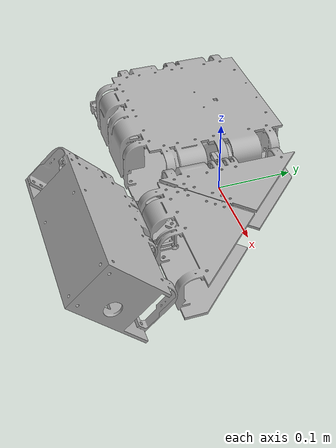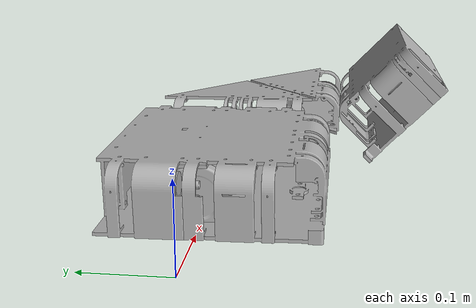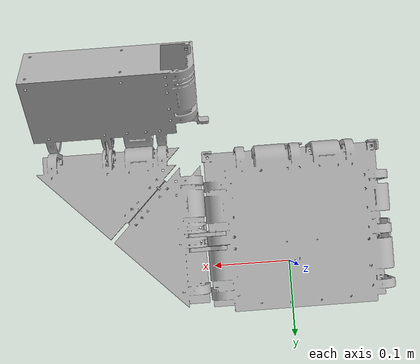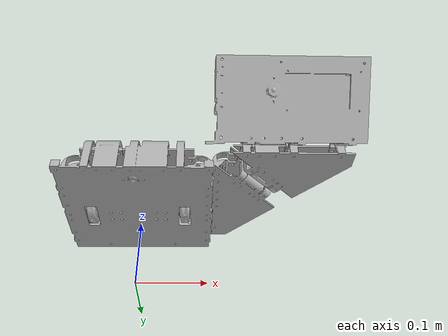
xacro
<?xml version="1.0" ?>
<robot name="oscar" xmlns:xacro="http://www.ros.org/wiki/xacro">

<xacro:include filename="$(find oscar_description)/urdf/materials.xacro" />
<xacro:include filename="$(find oscar_description)/urdf/oscar.trans" />
<xacro:include filename="$(find oscar_description)/urdf/oscar.gazebo" />
<link name="base_link">
  <inertial>
    <origin xyz="0.0019778566400626535 -0.04361891802559598 0.11535924434069494" rpy="0 0 0"/>
    <mass value="3.5985309735333133"/>
    <inertia ixx="0.012207" iyy="0.015756" izz="0.024778" ixy="0.000576" iyz="-7.1e-05" ixz="-0.000114"/>
  </inertial>
  <visual>
    <origin xyz="0 0 0" rpy="0 0 0"/>
    <geometry>
      <mesh filename="package://oscar_description/meshes/base_link.stl" scale="0.001 0.001 0.001"/>
    </geometry>
    <material name="silver"/>
  </visual>
  <collision>
    <origin xyz="0 0 0" rpy="0 0 0"/>
    <geometry>
      <mesh filename="package://oscar_description/meshes/base_link.stl" scale="0.001 0.001 0.001"/>
    </geometry>
  </collision>
</link>

<link name="wheel_Link_2">
  <inertial>
    <origin xyz="0.06416771283112625 -0.02007279494127408 0.08455593881219675" rpy="0 0 0"/>
    <mass value="0.21535367469923436"/>
    <inertia ixx="8.9e-05" iyy="4.7e-05" izz="4.7e-05" ixy="0.0" iyz="0.0" ixz="0.0"/>
  </inertial>
  <visual>
    <origin xyz="0.130563 0.016752 -0.026124" rpy="0 0 0"/>
    <geometry>
      <mesh filename="package://oscar_description/meshes/wheel_Link_2.stl" scale="0.001 0.001 0.001"/>
    </geometry>
    <material name="silver"/>
  </visual>
  <collision>
    <origin xyz="0.130563 0.016752 -0.026124" rpy="0 0 0"/>
    <geometry>
      <mesh filename="package://oscar_description/meshes/wheel_Link_2.stl" scale="0.001 0.001 0.001"/>
    </geometry>
  </collision>
</link>

<link name="wheel_Link_1">
  <inertial>
    <origin xyz="-0.001650240134483047 4.2524029316613754e-05 -5.335880294277118e-06" rpy="0 0 0"/>
    <mass value="0.21535367469923436"/>
    <inertia ixx="8.9e-05" iyy="4.7e-05" izz="4.7e-05" ixy="-0.0" iyz="0.0" ixz="0.0"/>
  </inertial>
  <visual>
    <origin xyz="-0.068149 0.036829 -0.111811" rpy="0 0 0"/>
    <geometry>
      <mesh filename="package://oscar_description/meshes/wheel_Link_1.stl" scale="0.001 0.001 0.001"/>
    </geometry>
    <material name="silver"/>
  </visual>
  <collision>
    <origin xyz="-0.068149 0.036829 -0.111811" rpy="0 0 0"/>
    <geometry>
      <mesh filename="package://oscar_description/meshes/wheel_Link_1.stl" scale="0.001 0.001 0.001"/>
    </geometry>
  </collision>
</link>

<link name="link_pair_1">
  <inertial>
    <origin xyz="0.012226827691112607 -0.007990888814527395 0.0001761830523612784" rpy="0 0 0"/>
    <mass value="0.029027751433312272"/>
    <inertia ixx="2e-06" iyy="6e-06" izz="7e-06" ixy="1e-06" iyz="0.0" ixz="-0.0"/>
  </inertial>
  <visual>
    <origin xyz="-0.086901 0.025681 -0.128824" rpy="0 0 0"/>
    <geometry>
      <mesh filename="package://oscar_description/meshes/link_pair_1.stl" scale="0.001 0.001 0.001"/>
    </geometry>
    <material name="silver"/>
  </visual>
  <collision>
    <origin xyz="-0.086901 0.025681 -0.128824" rpy="0 0 0"/>
    <geometry>
      <mesh filename="package://oscar_description/meshes/link_pair_1.stl" scale="0.001 0.001 0.001"/>
    </geometry>
  </collision>
</link>

<link name="big_triangle_1">
  <inertial>
    <origin xyz="0.01959928810285337 -0.02154704692541016 -0.0025833920793428" rpy="0 0 0"/>
    <mass value="0.5852008654597004"/>
    <inertia ixx="0.000922" iyy="0.0005" izz="0.001124" ixy="9e-06" iyz="3.4e-05" ixz="-3.9e-05"/>
  </inertial>
  <visual>
    <origin xyz="-0.1234 0.03068 -0.129186" rpy="0 0 0"/>
    <geometry>
      <mesh filename="package://oscar_description/meshes/big_triangle_1.stl" scale="0.001 0.001 0.001"/>
    </geometry>
    <material name="silver"/>
  </visual>
  <collision>
    <origin xyz="-0.1234 0.03068 -0.129186" rpy="0 0 0"/>
    <geometry>
      <mesh filename="package://oscar_description/meshes/big_triangle_1.stl" scale="0.001 0.001 0.001"/>
    </geometry>
  </collision>
</link>

<link name="link_1">
  <inertial>
    <origin xyz="0.005479987897294147 -0.0076005169104072096 0.00011435253621608354" rpy="0 0 0"/>
    <mass value="0.0032878096446212726"/>
    <inertia ixx="0.0" iyy="0.0" izz="0.0" ixy="0.0" iyz="0.0" ixz="-0.0"/>
  </inertial>
  <visual>
    <origin xyz="-0.175817 0.066421 -0.117954" rpy="0 0 0"/>
    <geometry>
      <mesh filename="package://oscar_description/meshes/link_1.stl" scale="0.001 0.001 0.001"/>
    </geometry>
    <material name="silver"/>
  </visual>
  <collision>
    <origin xyz="-0.175817 0.066421 -0.117954" rpy="0 0 0"/>
    <geometry>
      <mesh filename="package://oscar_description/meshes/link_1.stl" scale="0.001 0.001 0.001"/>
    </geometry>
  </collision>
</link>

<link name="big_non-actuated_triangle_mirror_1">
  <inertial>
    <origin xyz="0.013865250567738768 -0.03190214556019534 0.008926750637037614" rpy="0 0 0"/>
    <mass value="0.5662185689427796"/>
    <inertia ixx="0.000481" iyy="0.000914" izz="0.001107" ixy="6e-06" iyz="-3.7e-05" ixz="2.9e-05"/>
  </inertial>
  <visual>
    <origin xyz="-0.188898 0.079501 -0.118182" rpy="0 0 0"/>
    <geometry>
      <mesh filename="package://oscar_description/meshes/big_non-actuated_triangle_mirror_1.stl" scale="0.001 0.001 0.001"/>
    </geometry>
    <material name="silver"/>
  </visual>
  <collision>
    <origin xyz="-0.188898 0.079501 -0.118182" rpy="0 0 0"/>
    <geometry>
      <mesh filename="package://oscar_description/meshes/big_non-actuated_triangle_mirror_1.stl" scale="0.001 0.001 0.001"/>
    </geometry>
  </collision>
</link>

<link name="link__1__1">
  <inertial>
    <origin xyz="-0.001500000000000723 -0.018248813930114405 -0.00015877422356638804" rpy="0 0 0"/>
    <mass value="0.005831209644621273"/>
    <inertia ixx="1e-06" iyy="0.0" izz="1e-06" ixy="-0.0" iyz="-0.0" ixz="0.0"/>
  </inertial>
  <visual>
    <origin xyz="-0.212 0.131818 -0.130182" rpy="0 0 0"/>
    <geometry>
      <mesh filename="package://oscar_description/meshes/link__1__1.stl" scale="0.001 0.001 0.001"/>
    </geometry>
    <material name="silver"/>
  </visual>
  <collision>
    <origin xyz="-0.212 0.131818 -0.130182" rpy="0 0 0"/>
    <geometry>
      <mesh filename="package://oscar_description/meshes/link__1__1.stl" scale="0.001 0.001 0.001"/>
    </geometry>
  </collision>
</link>

<link name="rectangle_mirror_1">
  <inertial>
    <origin xyz="-0.012906729831406949 -0.04529666208562133 -0.01086883116906677" rpy="0 0 0"/>
    <mass value="1.2875886385584925"/>
    <inertia ixx="0.002195" iyy="0.005065" izz="0.005858" ixy="0.000235" iyz="0.000123" ixz="-0.000113"/>
  </inertial>
  <visual>
    <origin xyz="-0.212 0.168316 -0.129864" rpy="0 0 0"/>
    <geometry>
      <mesh filename="package://oscar_description/meshes/rectangle_mirror_1.stl" scale="0.001 0.001 0.001"/>
    </geometry>
    <material name="silver"/>
  </visual>
  <collision>
    <origin xyz="-0.212 0.168316 -0.129864" rpy="0 0 0"/>
    <geometry>
      <mesh filename="package://oscar_description/meshes/rectangle_mirror_1.stl" scale="0.001 0.001 0.001"/>
    </geometry>
  </collision>
</link>

<joint name="Right wheel_joint 1" type="continuous">
  <origin xyz="-0.130563 -0.016752 0.026124" rpy="0 0 0"/>
  <parent link="base_link"/>
  <child link="wheel_Link_2"/>
  <axis xyz="-0.999962 -3.8e-05 -0.008725"/>
</joint>

<joint name="Left_wheel_joint" type="continuous">
  <origin xyz="0.068149 -0.036829 0.111811" rpy="0 0 0"/>
  <parent link="base_link"/>
  <child link="wheel_Link_1"/>
  <axis xyz="0.999962 3.8e-05 0.008725"/>
</joint>

<joint name="link_pair_1_to_base_link" type="revolute">
  <origin xyz="0.086901 -0.025681 0.128824" rpy="0 0 0"/>
  <parent link="base_link"/>
  <child link="link_pair_1"/>
  <axis xyz="-3.8e-05 -0.999962 0.008725"/>
  <limit upper="1.570796" lower="0.0" effort="100" velocity="100"/>
</joint>

<joint name="big_triangle_to_link_pair_1" type="revolute">
  <origin xyz="0.036499 -0.004999 0.000362" rpy="0 0 0"/>
  <parent link="link_pair_1"/>
  <child link="big_triangle_1"/>
  <axis xyz="-3.8e-05 -0.999962 0.008725"/>
  <limit upper="1.570796" lower="0.0" effort="100" velocity="100"/>
</joint>

<joint name="link_1_to_" type="revolute">
  <origin xyz="0.052417 -0.035741 -0.011232" rpy="0 0 0"/>
  <parent link="big_triangle_1"/>
  <child link="link_1"/>
  <axis xyz="0.707107 0.707107 -0.0"/>
  <limit upper="1.570796" lower="0.0" effort="100" velocity="100"/>
</joint>

<joint name="Revolute 7" type="revolute">
  <origin xyz="0.013081 -0.01308 0.000228" rpy="0 0 0"/>
  <parent link="link_1"/>
  <child link="big_non-actuated_triangle_mirror_1"/>
  <axis xyz="-0.707107 -0.707107 0.0"/>
  <limit upper="1.570796" lower="0.0" effort="100" velocity="100"/>
</joint>

<joint name="Revolute 8" type="revolute">
  <origin xyz="0.023102 -0.052317 0.012" rpy="0 0 0"/>
  <parent link="big_non-actuated_triangle_mirror_1"/>
  <child link="link__1__1"/>
  <axis xyz="1.0 -0.0 -0.0"/>
  <limit upper="0.017453" lower="-1.570796" effort="100" velocity="100"/>
</joint>

<joint name="Revolute 9" type="revolute">
  <origin xyz="0.0 -0.036498 -0.000318" rpy="0 0 0"/>
  <parent link="link__1__1"/>
  <child link="rectangle_mirror_1"/>
  <axis xyz="-1.0 0.0 0.0"/>
  <limit upper="1.570796" lower="0.017453" effort="100" velocity="100"/>
</joint>

</robot>

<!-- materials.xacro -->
<robot name="oscar" xmlns:xacro="http://www.ros.org/wiki/xacro" >

<material name="silver">
  <color rgba="0.700 0.700 0.700 1.000"/>
</material>

</robot>

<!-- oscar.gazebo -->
<robot name="oscar" xmlns:xacro="http://www.ros.org/wiki/xacro" >

<xacro:property name="body_color" value="Gazebo/Silver" />

<gazebo>
  <plugin name="control" filename="libgazebo_ros_control.so"/>
</gazebo>
<gazebo reference="base_link">
  <material>${body_color}</material>
  <mu1>0.2</mu1>
  <mu2>0.2</mu2>
  <selfCollide>true</selfCollide>
  <gravity>true</gravity>
</gazebo>

<gazebo reference="wheel_Link_2">
  <material>${body_color}</material>
  <mu1>0.2</mu1>
  <mu2>0.2</mu2>
  <selfCollide>true</selfCollide>
</gazebo>

<gazebo reference="wheel_Link_1">
  <material>${body_color}</material>
  <mu1>0.2</mu1>
  <mu2>0.2</mu2>
  <selfCollide>true</selfCollide>
</gazebo>

<gazebo reference="link_pair_1">
  <material>${body_color}</material>
  <mu1>0.2</mu1>
  <mu2>0.2</mu2>
  <selfCollide>true</selfCollide>
</gazebo>

<gazebo reference="big_triangle_1">
  <material>${body_color}</material>
  <mu1>0.2</mu1>
  <mu2>0.2</mu2>
  <selfCollide>true</selfCollide>
</gazebo>

<gazebo reference="link_1">
  <material>${body_color}</material>
  <mu1>0.2</mu1>
  <mu2>0.2</mu2>
  <selfCollide>true</selfCollide>
</gazebo>

<gazebo reference="big_non-actuated_triangle_mirror_1">
  <material>${body_color}</material>
  <mu1>0.2</mu1>
  <mu2>0.2</mu2>
  <selfCollide>true</selfCollide>
</gazebo>

<gazebo reference="link__1__1">
  <material>${body_color}</material>
  <mu1>0.2</mu1>
  <mu2>0.2</mu2>
  <selfCollide>true</selfCollide>
</gazebo>

<gazebo reference="rectangle_mirror_1">
  <material>${body_color}</material>
  <mu1>0.2</mu1>
  <mu2>0.2</mu2>
  <selfCollide>true</selfCollide>
</gazebo>

</robot>
